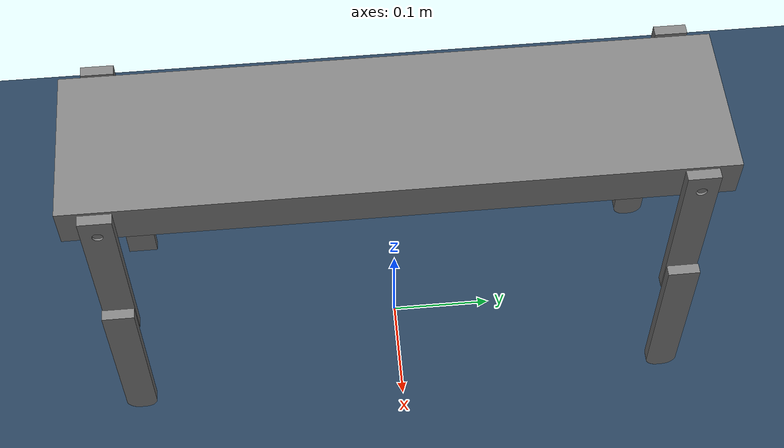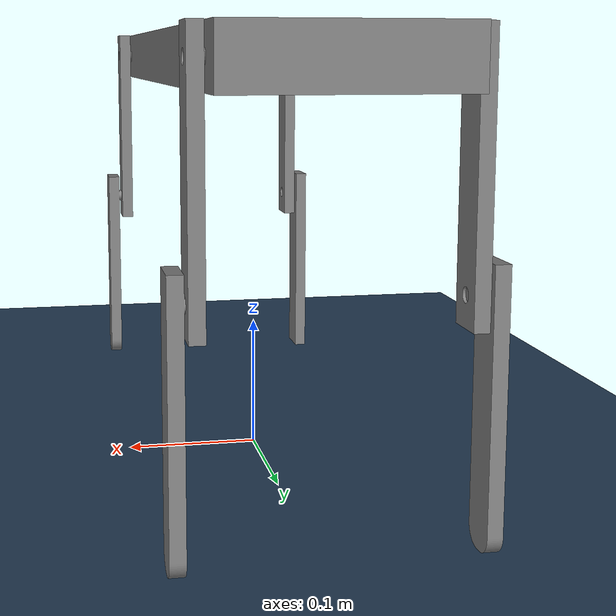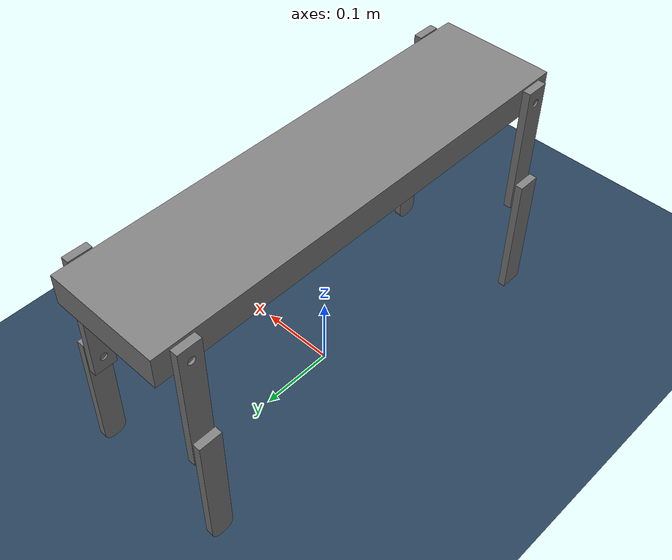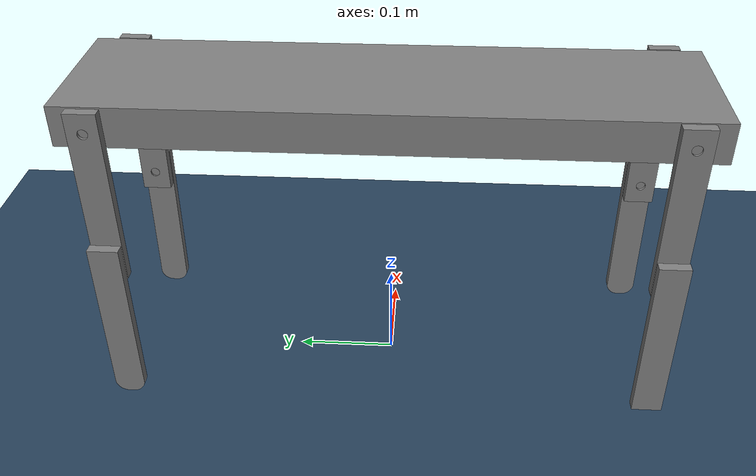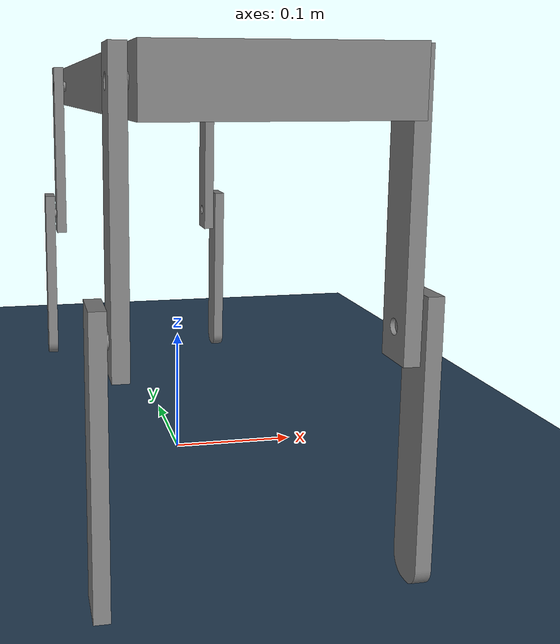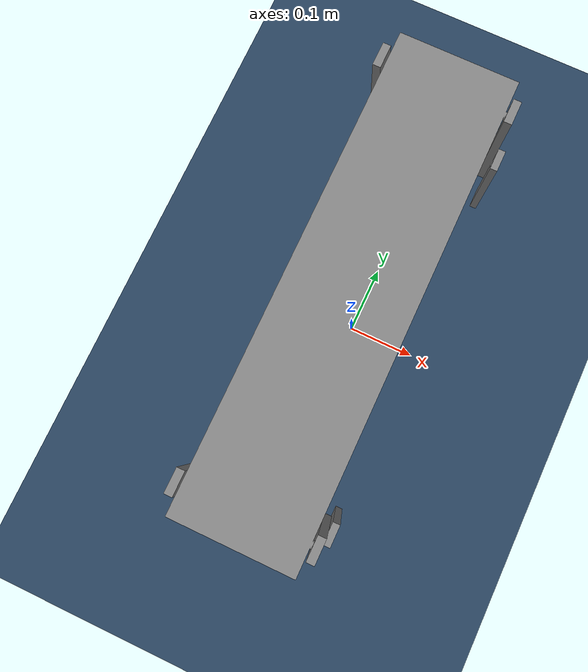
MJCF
<!-- Notes: -->
<!-- FR = Front Right, FL = Front Left, BR = Back Right, BL = Back Left -->

<mujoco model="Quadroped">
    <compiler angle="radian" />

    <!-- Settings -->
    <option timestep = "0.001" integrator="Euler" />
    <option gravity="0 0 -9.80"/>

    <asset>
        <!-- CAD Files -->
        <mesh name="Body-v1" file="meshes/Body-v1.stl" scale="0.001 0.001 0.001" />
        <mesh name="Lower-leg-1" file="meshes/Lower-leg-1.stl" scale="0.001 0.001 0.001" />
        <mesh name="Upper-leg-1" file="meshes/Upper-leg-1.stl" scale="0.001 0.001 0.001" />
        <mesh name="Upper-leg-2" file="meshes/Upper-leg-2.stl" scale="0.001 0.001 0.001" />
        <mesh name="Lower-leg-2" file="meshes/Lower-leg-2.stl" scale="0.001 0.001 0.001" />
        <mesh name="Upper-leg-3" file="meshes/Upper-leg-3.stl" scale="0.001 0.001 0.001" />
        <mesh name="Lower-leg-3" file="meshes/Lower-leg-3.stl" scale="0.001 0.001 0.001" />
        <mesh name="Upper-leg-4" file="meshes/Upper-leg-4.stl" scale="0.001 0.001 0.001" />
        <mesh name="Lower-leg-4" file="meshes/Lower-leg-4.stl" scale="0.001 0.001 0.001" />

        <!-- World Files -->
        <texture type="skybox" builtin="gradient" rgb1=".3 .5 .7" rgb2="0 0 0" width="32" height="512"/>
        <texture name="grid" type="2d" builtin="checker" width="512" height="512" rgb1=".1 .2 .3" rgb2=".2 .3 .4"/>
        <material name="grid" texture="grid" texrepeat="1 1" texuniform="true" reflectance=".3"/>
    </asset>

    <worldbody>
        <!-- World Plane -->
        <geom name="floor" size="0 0 .05" type="plane" material="grid" friction = "2 0.005 0.0001"/>
        <light name="spotlight" mode="targetbodycom" target="Body-v1" diffuse=".8 .8 .8" specular="0.3 0.3 0.3" pos="0 -6 4" cutoff="30"/>
        <light name="top" pos="0 0 2" mode="trackcom"/>

        <!-- Wrapper to rotate the robot to the right axis -->
        <body name="wrapper" pos="0 0 0" euler="1.57 0 0">
            <!-- Enables Gravity for the Body -->
            <joint type = "free"/>

            <!-- Parent Body for Robot -->
            <body name="Body-v1" pos="0.0 0.31 0.0" euler="-0.0 0.0 -0.0">

                <!-- Body -->
                <geom name="Body-v1_geom" type="mesh" mesh="Body-v1" pos="0 0 0" euler="0 0 0" />
                <inertial mass="28.28466150233067" pos="0.0 2.5241714164863475e-18 0.0" fullinertia="0.8533001622699443 0.9026775472629809 0.056913693261835374 -2.2846506908535957e-17 -1.8277205526828766e-16 0.0" />

                <!-- Front Right Leg -->
                <body name="Upper-leg-4" pos="-0.07700000000000002 -0.06890000000000006 0.265" euler="-0.0 -1.5707963267948963 0">
                    <joint name="FR-Hip" type="hinge" axis="0.0 0.0 1.0" pos="0.0 0.06890000000000006 0.004999999999999992" stiffness="5" damping="1.0"/>
                    <geom name="Upper-leg-4_geom" type="mesh" mesh="Upper-leg-4" pos="0 0 0" euler="0 0 0" />
                    <inertial mass="0.4063882488346593" pos="-1.5880630144238238e-14 9.658940314238862e-17 0.005" fullinertia="0.0010478475656508172 3.471342654052731e-05 0.0010757878547107726 -8.673617379884035e-19 -1.925929944387236e-34 2.0251590889358678e-19" />
                    <body name="Lower-leg-4" pos="0.0 -0.13779999999999998 0.022" euler="-3.141592653589793 0.0 -3.141592653589793">
                        <joint name="FR-Knee" type="hinge" axis="0.0 0.0 -1.0" pos="8.437816446125266e-18 0.06890000000000002 0.010000000000000035" stiffness="5" damping="1.0"/>
                        <geom name="Lower-leg-4_geom" type="mesh" mesh="Lower-leg-4" pos="0 0 0" euler="0 0 0" />
                        <inertial mass="0.4248843755826693" pos="-2.2772772242371458e-14 0.0009997881825223242 0.005145107138247074" fullinertia="0.0011361051854464274 3.5590752875500065e-05 0.0011633993497458112 6.590601467234604e-16 -1.735236150243669e-18 -4.186303079975569e-06" />
                    </body>
                </body>

                <!-- Front Left Leg -->
                <body name="Upper-leg-1" pos="0.087 -0.0689 0.265" euler="-0.0 -1.5707963267948963 0">
                    <joint name="FL-Hip" type="hinge" axis="0.0 0.0 1.0" pos="0.0 0.0689 0.01" stiffness="5" damping="1.0"/>
                    <geom name="Upper-leg-1_geom" type="mesh" mesh="Upper-leg-1" pos="0 0 0" euler="0 0 0"/>
                    <inertial mass="0.4063882488346593" pos="-1.5880630144238238e-14 9.880984919163893e-17 0.005" fullinertia="0.0010478475656508172 3.471342654052731e-05 0.0010757878547107726 -8.67361737988404e-19 -1.7347234759768069e-18 6.648458290948168e-19" />
                    <body name="Lower-leg-1" pos="0.0 -0.13780000000000034 -0.013000000000000125" euler="-0.0 0.0 -0.0">
                        <joint name="FL-Knee" type="hinge" axis="0.0 0.0 1.0" pos="0.0 0.06890000000000077 0.020000000000000295"  stiffness="5" damping="1.0"/>
                        <geom name="Lower-leg-1_geom" type="mesh" mesh="Lower-leg-1" pos="0 0 0" euler="0 0 0" />
                        <inertial mass="0.4248843755826693" pos="-2.2737367544323207e-14 0.0009997881825222943 0.005145107138247155" fullinertia="0.001136105185446424 3.559075287549352e-05 0.0011633993497458311 6.522560269672831e-16 -1.7347234759769616e-18 -4.186303079975615e-06" />
                    </body>
                </body>

                <!-- Back Right Leg -->
                <body name="Upper-leg-3" pos="-0.08799999999999998 -0.06890000000000006 -0.265" euler="-1.2246467991473532e-16 1.5707963267948963 0">
                    <joint name="BR-Hip" type="hinge" axis="-0.0 -2.220446049250313e-16 -1.0" pos="8.43781644612527e-18 0.06890000000000006 0.009999999999999966" stiffness="5" damping="1.0"/>
                    <geom name="Upper-leg-3_geom" type="mesh" mesh="Upper-leg-3" pos="0 0 0" euler="0 0 0" />
                    <inertial mass="0.4063882488346593" pos="-1.5880630144238238e-14 9.880984919164088e-17 0.005" fullinertia="0.0010478475656508172 3.471342654052731e-05 0.0010757878547107726 -9.91434886045236e-19 2.7401312609146714e-34 6.648458290948168e-19" />
                    <body name="Lower-leg-3" pos="-3.552713678800501e-17 -0.13779999999999998 -0.012" euler="-0.0 0.0 -0.0">
                        <joint name="BR-Knee" type="hinge" axis="0.0 0.0 -1.0" pos="8.437816446125266e-18 0.06890000000000002 0.009999999999999993"  stiffness="5" damping="1.0"/>
                        <geom name="Lower-leg-3_geom" type="mesh" mesh="Lower-leg-3" pos="0 0 0" euler="0 0 0" />
                        <inertial mass="0.4248843755826693" pos="-2.2737245105583453e-14 0.0009997881825223242 0.005145107138247091" fullinertia="0.0011361051854464274 3.559075287547925e-05 0.0011633993497458042 6.555906997715068e-16 -1.735236150243668e-18 -4.186303079977304e-06" />
                    </body>
                </body>

                <!-- Back Left Leg -->
                <body name="Upper-leg-2" pos="0.07700000000000007 -0.06889680384218429 -0.26433635828063684" euler="0.009632104227912582 1.5707963267948963 0">
                    <joint name="BL-Hip" type="hinge" axis="-2.138723706643446e-18 2.2203430464056605e-16 -1.0" pos="1.3042952135000618e-16 0.06890000000000059 -5.40907754493371e-17"  stiffness="5" damping="1.0"/>
                    <geom name="Upper-leg-2_geom" type="mesh" mesh="Upper-leg-2" pos="0 0 0" euler="0 0 0" />
                    <inertial mass="0.4063882488346593" pos="-1.5882192595877925e-14 8.572535798946927e-17 0.005000000000000009" fullinertia="0.0010478475656508083 3.4713426540532954e-05 0.0010757878547107795 8.876905287225068e-19 -3.4692262534502614e-18 -2.6457179465415943e-19" />
                    <body name="Lower-leg-2" pos="-7.105427357601002e-17 -0.13780000000000023 0.022" euler="3.141592653589793 0.0 -3.141592653589793">
                        <joint name="BL-Knee" type="hinge" axis="0.0 0.0 1.0000000000000013" pos="-2.872043445458069e-07 0.06889961043263586 0.010000000000000045"  stiffness="5" damping="1.0"/>
                        <geom name="Lower-leg-2_geom" type="mesh" mesh="Lower-leg-2" pos="0 0 0" euler="0 0 0" />
                        <inertial mass="0.4248843755826693" pos="-2.2722853126552235e-14 0.00099978818252233 0.00514510713824708" fullinertia="0.001136105185446433 3.5590752875494664e-05 0.001163399349745842 6.511514960040599e-16 -4.959809252907669e-18 -4.186303079976195e-06" />
                    </body>
                </body>

            </body>

            <!-- End of Wrapper Body -->
        </body>

        <!-- End of WorldBody -->
    </worldbody>

        <!-- motors -->
    <actuator>
        <!-- Front Right -->
        <position name="FR-H-servo" joint = "FR-Hip" kp = '1000'/>
        <position name="FR-K-servo" joint = "FR-Knee" kp = "1000"/>

        <!-- Front Left -->
        <position name="FL-H-servo" joint = "FL-Hip" kp = '1000'/>
        <position name="FL-K-servo" joint = "FL-Knee" kp = "1000"/>

        <!-- Back Right -->
        <position name="BR-H-servo" joint = "BR-Hip" kp = '1000'/>
        <position name="BR-K-servo" joint = "BR-Knee" kp = "1000"/>

        <!-- Back Left -->
        <position name="BL-H-servo" joint = "BL-Hip" kp = '1000'/>
        <position name="BL-K-servo" joint = "BL-Knee" kp = "1000"/>
    </actuator>

    <!-- File Definition End -->
</mujoco>
